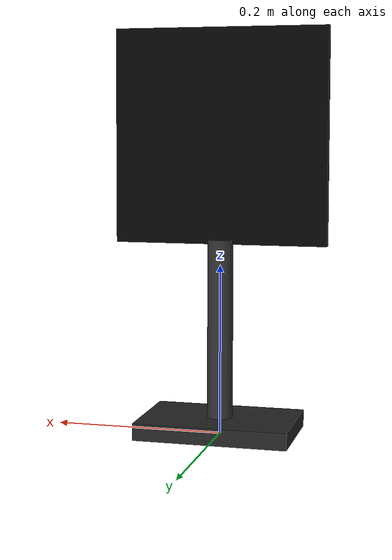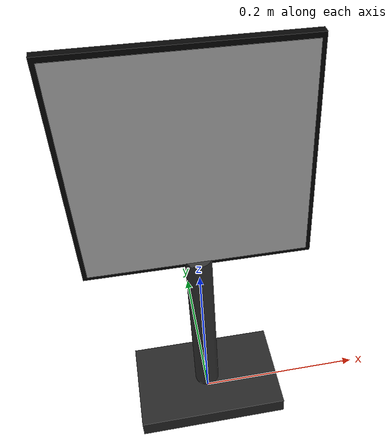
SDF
<?xml version="1.0"?>

<sdf version="1.6">

  <model name="aruco_marker_0">

    <static>true</static>

    <link name="marker_link">

      <!-- 地面底座 -->
      <visual name="base_visual">
        <pose>0 0 0.01 0 0 0</pose>

        <geometry>
          <box>
            <size>0.18 0.12 0.02</size>
          </box>
        </geometry>

        <material>
          <ambient>0.15 0.15 0.15 1</ambient>
          <diffuse>0.15 0.15 0.15 1</diffuse>
        </material>
      </visual>

      <collision name="base_collision">
        <pose>0 0 0.01 0 0 0</pose>

        <geometry>
          <box>
            <size>0.18 0.12 0.02</size>
          </box>
        </geometry>
      </collision>

      <!-- 支撑杆 -->
      <visual name="pole_visual">
        <pose>0 0 0.12 0 0 0</pose>

        <geometry>
          <cylinder>
            <radius>0.015</radius>
            <length>0.22</length>
          </cylinder>
        </geometry>

        <material>
          <ambient>0.20 0.20 0.20 1</ambient>
          <diffuse>0.20 0.20 0.20 1</diffuse>
        </material>
      </visual>

      <collision name="pole_collision">
        <pose>0 0 0.12 0 0 0</pose>

        <geometry>
          <cylinder>
            <radius>0.015</radius>
            <length>0.22</length>
          </cylinder>
        </geometry>
      </collision>

      <!-- Marker黑色背板，中心高度0.35m -->
      <visual name="marker_backing_visual">
        <pose>0 0 0.35 0 0 0</pose>

        <geometry>
          <box>
            <size>0.25 0.01 0.25</size>
          </box>
        </geometry>

        <material>
          <ambient>0.02 0.02 0.02 1</ambient>
          <diffuse>0.02 0.02 0.02 1</diffuse>
        </material>
      </visual>

      <collision name="marker_backing_collision">
        <pose>0 0 0.35 0 0 0</pose>

        <geometry>
          <box>
            <size>0.25 0.01 0.25</size>
          </box>
        </geometry>
      </collision>

      <!--
        ArUco正面纹理。
        Plane原本位于XY平面，绕X轴旋转90度后竖直。
        正面朝向模型局部-Y方向。
      -->
      <visual name="aruco_marker_visual">
        <pose>0 -0.006 0.35 1.57079632679 0 0</pose>

        <geometry>
          <plane>
            <normal>0 0 1</normal>
            <size>0.24 0.24</size>
          </plane>
        </geometry>

        <material>
          <script>
            <uri>
              model://aruco_marker_0/materials/scripts
            </uri>

            <uri>
              model://aruco_marker_0/materials/textures
            </uri>

            <name>AutoFactory/ArucoMarker0</name>
          </script>
        </material>

        <cast_shadows>false</cast_shadows>
      </visual>

    </link>

  </model>

</sdf>
